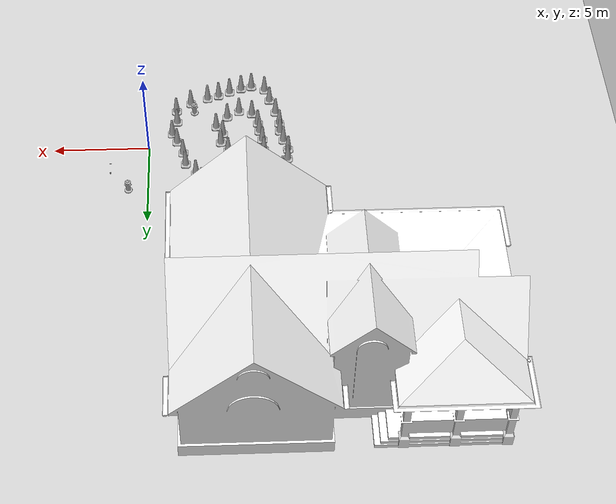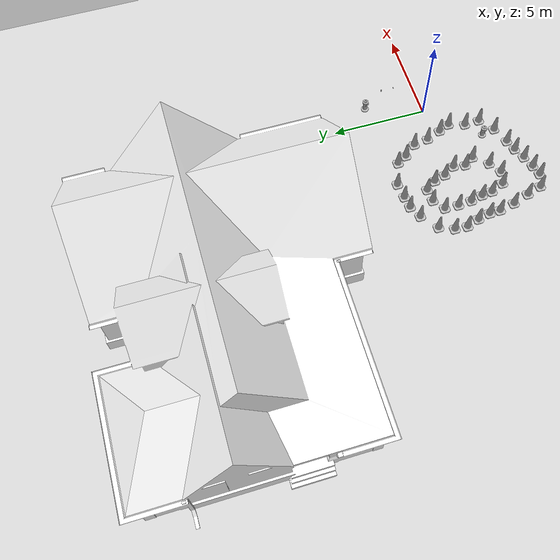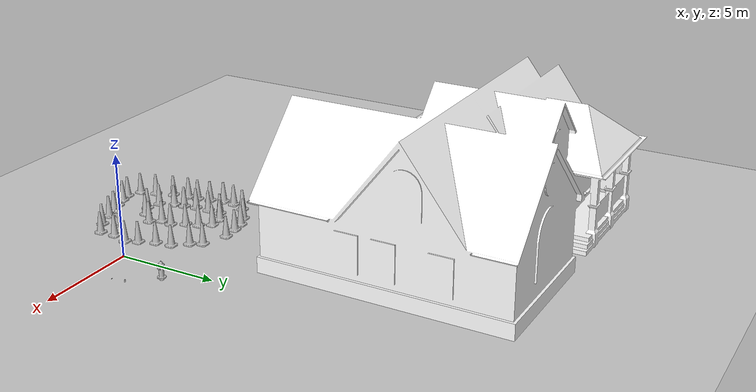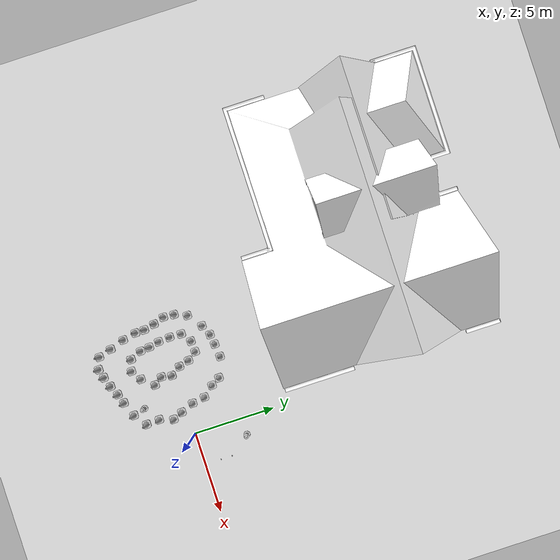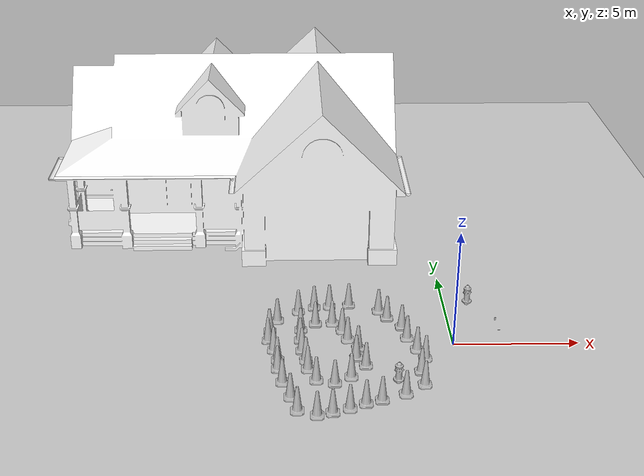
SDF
<sdf version="1.7">
 <world name="default">
  <light name="sun" type="directional">
   <pose>0 0 10 0 -0 0</pose>
   <diffuse>0.8 0.8 0.8 1</diffuse>
   <specular>0.2 0.2 0.2 1</specular>
   <attenuation>
    <range>1000</range>
    <constant>0.9</constant>
    <linear>0.01</linear>
    <quadratic>0.001</quadratic>
   </attenuation>
   <direction>-0.5 0.1 -0.9</direction>
   <spot><inner_angle>0</inner_angle><outer_angle>0</outer_angle><falloff>0</falloff></spot>
  </light>
  <model name="ground_plane">
   <static>1</static>
   <link name="link">
    <collision name="collision">
     <geometry><plane><normal>0 0 1</normal><size>100 100</size></plane></geometry>
     <surface>
      <contact><collide_bitmask>65535</collide_bitmask></contact>
      <friction><ode><mu>100</mu><mu2>50</mu2></ode></friction>
     </surface>
    </collision>
    <visual name="visual">
     <cast_shadows>0</cast_shadows>
     <geometry><plane><normal>0 0 1</normal><size>100 100</size></plane></geometry>
     <material>
      <script><uri>file://media/materials/scripts/gazebo.material</uri><name>Gazebo/Grey</name></script>
     </material>
    </visual>
   </link>
  </model>
  <gravity>0 0 -9.8</gravity>
  <magnetic_field>6e-06 2.3e-05 -4.2e-05</magnetic_field>
  <atmosphere type="adiabatic"/>
  <physics type="ode">
   <max_step_size>0.001</max_step_size>
   <real_time_factor>1</real_time_factor>
   <real_time_update_rate>1000</real_time_update_rate>
  </physics>
  <scene><ambient>0.4 0.4 0.4 1</ambient><background>0.7 0.7 0.7 1</background><shadows>1</shadows></scene>
  <audio><device>default</device></audio>
  <spherical_coordinates>
   <surface_model>EARTH_WGS84</surface_model>
   <latitude_deg>0</latitude_deg>
   <longitude_deg>0</longitude_deg>
   <elevation>0</elevation>
   <heading_deg>0</heading_deg>
  </spherical_coordinates>
  <model name="fire_hydrant">
   <static>1</static>
   <link name="link">
    <collision name="collision">
     <geometry><mesh><uri>model://fire_hydrant/meshes/fire_hydrant.dae</uri></mesh></geometry>
    </collision>
    <visual name="visual">
     <geometry><mesh><uri>model://fire_hydrant/meshes/fire_hydrant.dae</uri></mesh></geometry>
    </visual>
   </link>
   <pose>1 3 0 0 -0 0</pose>
  </model>
  <model name="House 1">
   <static>1</static>
   <link name="link">
    <collision name="collision">
     <geometry><mesh><uri>model://house_1/meshes/house_1.dae</uri><scale>1.5 1.5 1.5</scale></mesh></geometry>
    </collision>
    <visual name="visual">
     <geometry><mesh><uri>model://house_1/meshes/house_1.dae</uri><scale>1.5 1.5 1.5</scale></mesh></geometry>
     <material>
      <script>
       <uri>model://house_1/materials/scripts</uri>
       <uri>model://house_1/materials/textures</uri>
       <name>House_1/Diffuse</name>
      </script>
      <shader type="normal_map_tangent_space"><normal_map>House_1_Normal.png</normal_map></shader>
     </material>
    </visual>
   </link>
   <pose>-9 13 0 0 -0 0</pose>
  </model>
  <model name="stone_10_2_5_1cm">
   <link name="link">
    <pose>0 0 0.005 0 -0 0</pose>
    <inertial>
     <mass>0.0628</mass>
     <inertia>
      <ixx>3.79417e-06</ixx>
      <ixy>0</ixy>
      <ixz>0</ixz>
      <iyy>5.28567e-05</iyy>
      <iyz>0</iyz>
      <izz>5.56042e-05</izz>
     </inertia>
    </inertial>
    <collision name="collision">
     <geometry><box><size>0.1 0.025 0.01</size></box></geometry>
     <surface>
      <contact>
       <poissons_ratio>0.15</poissons_ratio>
       <elastic_modulus>8e+10</elastic_modulus>
       <ode><kp>100000</kp><kd>100</kd><max_vel>100</max_vel><min_depth>0.001</min_depth></ode>
      </contact>
      <friction>
       <torsional>
        <coefficient>1</coefficient>
        <use_patch_radius>0</use_patch_radius>
        <surface_radius>0.01</surface_radius>
       </torsional>
      </friction>
     </surface>
    </collision>
    <visual name="visual">
     <geometry><box><size>0.1 0.025 0.01</size></box></geometry>
     <material>
      <script><uri>file://media/materials/scripts/gazebo.material</uri><name>Gazebo/Grey</name></script>
     </material>
    </visual>
   </link>
   <pose>2 1 -0.001002 -0 -0 -0</pose>
  </model>
  <model name="coke_can">
   <link name="link">
    <inertial>
     <pose>0 0 0.06 0 -0 0</pose>
     <mass>0.39</mass>
     <inertia>
      <ixx>0.00055575</ixx>
      <ixy>0</ixy>
      <ixz>0</ixz>
      <iyy>0.00055575</iyy>
      <iyz>0</iyz>
      <izz>0.0001755</izz>
     </inertia>
    </inertial>
    <collision name="collision">
     <pose>0.003937 0.004724 -0.18 0 -0 0</pose>
     <geometry><mesh><uri>model://coke_can/meshes/coke_can.dae</uri></mesh></geometry>
     <surface>
      <friction><ode><mu>1</mu><mu2>1</mu2></ode></friction>
      <contact><ode><kp>1e+07</kp><kd>1</kd><min_depth>0.001</min_depth><max_vel>0.1</max_vel></ode></contact>
     </surface>
    </collision>
    <visual name="visual">
     <pose>0.003937 0.004724 -0.18 0 -0 0</pose>
     <geometry><mesh><uri>model://coke_can/meshes/coke_can.dae</uri></mesh></geometry>
    </visual>
   </link>
   <pose>1.98141 1.72126 -0.003472 -0.036728 0.008266 -0.000729</pose>
  </model>
  <model name="Construction Cone">
   <link name="link">
    <collision name="collision">
     <geometry>
      <mesh><scale>10 10 10</scale><uri>model://construction_cone/meshes/construction_cone.dae</uri></mesh>
     </geometry>
    </collision>
    <visual name="visual">
     <geometry>
      <mesh><scale>10 10 10</scale><uri>model://construction_cone/meshes/construction_cone.dae</uri></mesh>
     </geometry>
    </visual>
    <inertial>
     <inertia><ixx>1</ixx><ixy>0</ixy><ixz>0</ixz><iyy>1</iyy><iyz>0</iyz><izz>1</izz></inertia>
     <mass>1</mass>
    </inertial>
   </link>
   <pose>-3.59315 -1.4197 -0 0 -0 0</pose>
  </model>
  <model name="Construction Cone_0">
   <link name="link">
    <collision name="collision">
     <geometry>
      <mesh><scale>10 10 10</scale><uri>model://construction_cone/meshes/construction_cone.dae</uri></mesh>
     </geometry>
    </collision>
    <visual name="visual">
     <geometry>
      <mesh><scale>10 10 10</scale><uri>model://construction_cone/meshes/construction_cone.dae</uri></mesh>
     </geometry>
    </visual>
    <inertial>
     <inertia><ixx>1</ixx><ixy>0</ixy><ixz>0</ixz><iyy>1</iyy><iyz>0</iyz><izz>1</izz></inertia>
     <mass>1</mass>
    </inertial>
   </link>
   <pose>-3.82572 -0.266237 0 -0 -0 -0</pose>
  </model>
  <model name="Construction Cone_1">
   <link name="link">
    <collision name="collision">
     <geometry>
      <mesh><scale>10 10 10</scale><uri>model://construction_cone/meshes/construction_cone.dae</uri></mesh>
     </geometry>
    </collision>
    <visual name="visual">
     <geometry>
      <mesh><scale>10 10 10</scale><uri>model://construction_cone/meshes/construction_cone.dae</uri></mesh>
     </geometry>
    </visual>
    <inertial>
     <inertia><ixx>1</ixx><ixy>0</ixy><ixz>0</ixz><iyy>1</iyy><iyz>0</iyz><izz>1</izz></inertia>
     <mass>1</mass>
    </inertial>
   </link>
   <pose>-4.39054 0.991308 -0 0 -1e-06 0</pose>
  </model>
  <model name="fire_hydrant_0">
   <static>1</static>
   <link name="link">
    <collision name="collision">
     <geometry><mesh><uri>model://fire_hydrant/meshes/fire_hydrant.dae</uri></mesh></geometry>
    </collision>
    <visual name="visual">
     <geometry><mesh><uri>model://fire_hydrant/meshes/fire_hydrant.dae</uri></mesh></geometry>
    </visual>
   </link>
   <pose>-2.43254 -2.44206 0 0 -0 0</pose>
  </model>
  <model name="Construction Cone_2">
   <link name="link">
    <collision name="collision">
     <geometry>
      <mesh><scale>10 10 10</scale><uri>model://construction_cone/meshes/construction_cone.dae</uri></mesh>
     </geometry>
    </collision>
    <visual name="visual">
     <geometry>
      <mesh><scale>10 10 10</scale><uri>model://construction_cone/meshes/construction_cone.dae</uri></mesh>
     </geometry>
    </visual>
    <inertial>
     <inertia><ixx>1</ixx><ixy>0</ixy><ixz>0</ixz><iyy>1</iyy><iyz>0</iyz><izz>1</izz></inertia>
     <mass>1</mass>
    </inertial>
   </link>
   <pose>-1.49996 -1.83559 -1e-05 0 -0 0</pose>
  </model>
  <model name="Construction Cone_3">
   <link name="link">
    <collision name="collision">
     <geometry>
      <mesh><scale>10 10 10</scale><uri>model://construction_cone/meshes/construction_cone.dae</uri></mesh>
     </geometry>
    </collision>
    <visual name="visual">
     <geometry>
      <mesh><scale>10 10 10</scale><uri>model://construction_cone/meshes/construction_cone.dae</uri></mesh>
     </geometry>
    </visual>
    <inertial>
     <inertia><ixx>1</ixx><ixy>0</ixy><ixz>0</ixz><iyy>1</iyy><iyz>0</iyz><izz>1</izz></inertia>
     <mass>1</mass>
    </inertial>
   </link>
   <pose>-1.50504 -0.384565 0 -0 -0 -0</pose>
  </model>
  <model name="Construction Cone_4">
   <link name="link">
    <collision name="collision">
     <geometry>
      <mesh><scale>10 10 10</scale><uri>model://construction_cone/meshes/construction_cone.dae</uri></mesh>
     </geometry>
    </collision>
    <visual name="visual">
     <geometry>
      <mesh><scale>10 10 10</scale><uri>model://construction_cone/meshes/construction_cone.dae</uri></mesh>
     </geometry>
    </visual>
    <inertial>
     <inertia><ixx>1</ixx><ixy>0</ixy><ixz>0</ixz><iyy>1</iyy><iyz>0</iyz><izz>1</izz></inertia>
     <mass>1</mass>
    </inertial>
   </link>
   <pose>-1.24475 -0.983631 -0 0 -0 0</pose>
  </model>
  <model name="Construction Cone_5">
   <link name="link">
    <collision name="collision">
     <geometry>
      <mesh><scale>10 10 10</scale><uri>model://construction_cone/meshes/construction_cone.dae</uri></mesh>
     </geometry>
    </collision>
    <visual name="visual">
     <geometry>
      <mesh><scale>10 10 10</scale><uri>model://construction_cone/meshes/construction_cone.dae</uri></mesh>
     </geometry>
    </visual>
    <inertial>
     <inertia><ixx>1</ixx><ixy>0</ixy><ixz>0</ixz><iyy>1</iyy><iyz>0</iyz><izz>1</izz></inertia>
     <mass>1</mass>
    </inertial>
   </link>
   <pose>-1.46146 -2.65385 -0 0 -0 0</pose>
  </model>
  <model name="Construction Cone_6">
   <link name="link">
    <collision name="collision">
     <geometry>
      <mesh><scale>10 10 10</scale><uri>model://construction_cone/meshes/construction_cone.dae</uri></mesh>
     </geometry>
    </collision>
    <visual name="visual">
     <geometry>
      <mesh><scale>10 10 10</scale><uri>model://construction_cone/meshes/construction_cone.dae</uri></mesh>
     </geometry>
    </visual>
    <inertial>
     <inertia><ixx>1</ixx><ixy>0</ixy><ixz>0</ixz><iyy>1</iyy><iyz>0</iyz><izz>1</izz></inertia>
     <mass>1</mass>
    </inertial>
   </link>
   <pose>-1.82109 0.416762 -1e-05 -1e-06 -0 -0.016875</pose>
  </model>
  <model name="Construction Cone_7">
   <link name="link">
    <collision name="collision">
     <geometry>
      <mesh><scale>10 10 10</scale><uri>model://construction_cone/meshes/construction_cone.dae</uri></mesh>
     </geometry>
    </collision>
    <visual name="visual">
     <geometry>
      <mesh><scale>10 10 10</scale><uri>model://construction_cone/meshes/construction_cone.dae</uri></mesh>
     </geometry>
    </visual>
    <inertial>
     <inertia><ixx>1</ixx><ixy>0</ixy><ixz>0</ixz><iyy>1</iyy><iyz>0</iyz><izz>1</izz></inertia>
     <mass>1</mass>
    </inertial>
   </link>
   <pose>-1.95178 1.21823 -1e-05 0 1e-06 0</pose>
  </model>
  <model name="Construction Cone_8">
   <link name="link">
    <collision name="collision">
     <geometry>
      <mesh><scale>10 10 10</scale><uri>model://construction_cone/meshes/construction_cone.dae</uri></mesh>
     </geometry>
    </collision>
    <visual name="visual">
     <geometry>
      <mesh><scale>10 10 10</scale><uri>model://construction_cone/meshes/construction_cone.dae</uri></mesh>
     </geometry>
    </visual>
    <inertial>
     <inertia><ixx>1</ixx><ixy>0</ixy><ixz>0</ixz><iyy>1</iyy><iyz>0</iyz><izz>1</izz></inertia>
     <mass>1</mass>
    </inertial>
   </link>
   <pose>-2.49518 1.88441 -0 0 -1e-06 0.002082</pose>
  </model>
  <model name="Construction Cone_9">
   <link name="link">
    <collision name="collision">
     <geometry>
      <mesh><scale>10 10 10</scale><uri>model://construction_cone/meshes/construction_cone.dae</uri></mesh>
     </geometry>
    </collision>
    <visual name="visual">
     <geometry>
      <mesh><scale>10 10 10</scale><uri>model://construction_cone/meshes/construction_cone.dae</uri></mesh>
     </geometry>
    </visual>
    <inertial>
     <inertia><ixx>1</ixx><ixy>0</ixy><ixz>0</ixz><iyy>1</iyy><iyz>0</iyz><izz>1</izz></inertia>
     <mass>1</mass>
    </inertial>
   </link>
   <pose>-4.2044 0.351146 -0 0 -1e-06 0</pose>
  </model>
  <model name="Construction Cone_10">
   <link name="link">
    <collision name="collision">
     <geometry>
      <mesh><scale>10 10 10</scale><uri>model://construction_cone/meshes/construction_cone.dae</uri></mesh>
     </geometry>
    </collision>
    <visual name="visual">
     <geometry>
      <mesh><scale>10 10 10</scale><uri>model://construction_cone/meshes/construction_cone.dae</uri></mesh>
     </geometry>
    </visual>
    <inertial>
     <inertia><ixx>1</ixx><ixy>0</ixy><ixz>0</ixz><iyy>1</iyy><iyz>0</iyz><izz>1</izz></inertia>
     <mass>1</mass>
    </inertial>
   </link>
   <pose>-4.1982 -2.13147 -0 0 -1e-06 0</pose>
  </model>
  <model name="Construction Cone_11">
   <link name="link">
    <collision name="collision">
     <geometry>
      <mesh><scale>10 10 10</scale><uri>model://construction_cone/meshes/construction_cone.dae</uri></mesh>
     </geometry>
    </collision>
    <visual name="visual">
     <geometry>
      <mesh><scale>10 10 10</scale><uri>model://construction_cone/meshes/construction_cone.dae</uri></mesh>
     </geometry>
    </visual>
    <inertial>
     <inertia><ixx>1</ixx><ixy>0</ixy><ixz>0</ixz><iyy>1</iyy><iyz>0</iyz><izz>1</izz></inertia>
     <mass>1</mass>
    </inertial>
   </link>
   <pose>-3.93872 -0.894186 -1e-06 2e-06 2e-06 0</pose>
  </model>
  <model name="Construction Cone_12">
   <link name="link">
    <collision name="collision">
     <geometry>
      <mesh><scale>10 10 10</scale><uri>model://construction_cone/meshes/construction_cone.dae</uri></mesh>
     </geometry>
    </collision>
    <visual name="visual">
     <geometry>
      <mesh><scale>10 10 10</scale><uri>model://construction_cone/meshes/construction_cone.dae</uri></mesh>
     </geometry>
    </visual>
    <inertial>
     <inertia><ixx>1</ixx><ixy>0</ixy><ixz>0</ixz><iyy>1</iyy><iyz>0</iyz><izz>1</izz></inertia>
     <mass>1</mass>
    </inertial>
   </link>
   <pose>-2.23215 -3.22096 -0 1e-06 -0 0</pose>
  </model>
  <model name="Construction Cone_13">
   <link name="link">
    <collision name="collision">
     <geometry>
      <mesh><scale>10 10 10</scale><uri>model://construction_cone/meshes/construction_cone.dae</uri></mesh>
     </geometry>
    </collision>
    <visual name="visual">
     <geometry>
      <mesh><scale>10 10 10</scale><uri>model://construction_cone/meshes/construction_cone.dae</uri></mesh>
     </geometry>
    </visual>
    <inertial>
     <inertia><ixx>1</ixx><ixy>0</ixy><ixz>0</ixz><iyy>1</iyy><iyz>0</iyz><izz>1</izz></inertia>
     <mass>1</mass>
    </inertial>
   </link>
   <pose>-3.14576 -3.5718 -0 0 -0 0</pose>
  </model>
  <model name="Construction Cone_14">
   <link name="link">
    <collision name="collision">
     <geometry>
      <mesh><scale>10 10 10</scale><uri>model://construction_cone/meshes/construction_cone.dae</uri></mesh>
     </geometry>
    </collision>
    <visual name="visual">
     <geometry>
      <mesh><scale>10 10 10</scale><uri>model://construction_cone/meshes/construction_cone.dae</uri></mesh>
     </geometry>
    </visual>
    <inertial>
     <inertia><ixx>1</ixx><ixy>0</ixy><ixz>0</ixz><iyy>1</iyy><iyz>0</iyz><izz>1</izz></inertia>
     <mass>1</mass>
    </inertial>
   </link>
   <pose>-4.84028 -2.53095 -0 0 -1e-06 0</pose>
  </model>
  <model name="Construction Cone_15">
   <link name="link">
    <collision name="collision">
     <geometry>
      <mesh><scale>10 10 10</scale><uri>model://construction_cone/meshes/construction_cone.dae</uri></mesh>
     </geometry>
    </collision>
    <visual name="visual">
     <geometry>
      <mesh><scale>10 10 10</scale><uri>model://construction_cone/meshes/construction_cone.dae</uri></mesh>
     </geometry>
    </visual>
    <inertial>
     <inertia><ixx>1</ixx><ixy>0</ixy><ixz>0</ixz><iyy>1</iyy><iyz>0</iyz><izz>1</izz></inertia>
     <mass>1</mass>
    </inertial>
   </link>
   <pose>-5.53182 -2.32922 -0 0 -1e-06 0</pose>
  </model>
  <model name="Construction Cone_16">
   <link name="link">
    <collision name="collision">
     <geometry>
      <mesh><scale>10 10 10</scale><uri>model://construction_cone/meshes/construction_cone.dae</uri></mesh>
     </geometry>
    </collision>
    <visual name="visual">
     <geometry>
      <mesh><scale>10 10 10</scale><uri>model://construction_cone/meshes/construction_cone.dae</uri></mesh>
     </geometry>
    </visual>
    <inertial>
     <inertia><ixx>1</ixx><ixy>0</ixy><ixz>0</ixz><iyy>1</iyy><iyz>0</iyz><izz>1</izz></inertia>
     <mass>1</mass>
    </inertial>
   </link>
   <pose>-5.83387 -1.61602 -0 -0 -0 -0</pose>
  </model>
  <model name="Construction Cone_17">
   <link name="link">
    <collision name="collision">
     <geometry>
      <mesh><scale>10 10 10</scale><uri>model://construction_cone/meshes/construction_cone.dae</uri></mesh>
     </geometry>
    </collision>
    <visual name="visual">
     <geometry>
      <mesh><scale>10 10 10</scale><uri>model://construction_cone/meshes/construction_cone.dae</uri></mesh>
     </geometry>
    </visual>
    <inertial>
     <inertia><ixx>1</ixx><ixy>0</ixy><ixz>0</ixz><iyy>1</iyy><iyz>0</iyz><izz>1</izz></inertia>
     <mass>1</mass>
    </inertial>
   </link>
   <pose>-5.89955 -1.03597 -0 0 -0 0</pose>
  </model>
  <model name="Construction Cone_18">
   <link name="link">
    <collision name="collision">
     <geometry>
      <mesh><scale>10 10 10</scale><uri>model://construction_cone/meshes/construction_cone.dae</uri></mesh>
     </geometry>
    </collision>
    <visual name="visual">
     <geometry>
      <mesh><scale>10 10 10</scale><uri>model://construction_cone/meshes/construction_cone.dae</uri></mesh>
     </geometry>
    </visual>
    <inertial>
     <inertia><ixx>1</ixx><ixy>0</ixy><ixz>0</ixz><iyy>1</iyy><iyz>0</iyz><izz>1</izz></inertia>
     <mass>1</mass>
    </inertial>
   </link>
   <pose>-6.03919 -0.392927 -1e-05 -1e-06 1e-06 0</pose>
  </model>
  <model name="Construction Cone_19">
   <link name="link">
    <collision name="collision">
     <geometry>
      <mesh><scale>10 10 10</scale><uri>model://construction_cone/meshes/construction_cone.dae</uri></mesh>
     </geometry>
    </collision>
    <visual name="visual">
     <geometry>
      <mesh><scale>10 10 10</scale><uri>model://construction_cone/meshes/construction_cone.dae</uri></mesh>
     </geometry>
    </visual>
    <inertial>
     <inertia><ixx>1</ixx><ixy>0</ixy><ixz>0</ixz><iyy>1</iyy><iyz>0</iyz><izz>1</izz></inertia>
     <mass>1</mass>
    </inertial>
   </link>
   <pose>-6.09581 0.330101 -0 0 -0 0</pose>
  </model>
  <model name="Construction Cone_20">
   <link name="link">
    <collision name="collision">
     <geometry>
      <mesh><scale>10 10 10</scale><uri>model://construction_cone/meshes/construction_cone.dae</uri></mesh>
     </geometry>
    </collision>
    <visual name="visual">
     <geometry>
      <mesh><scale>10 10 10</scale><uri>model://construction_cone/meshes/construction_cone.dae</uri></mesh>
     </geometry>
    </visual>
    <inertial>
     <inertia><ixx>1</ixx><ixy>0</ixy><ixz>0</ixz><iyy>1</iyy><iyz>0</iyz><izz>1</izz></inertia>
     <mass>1</mass>
    </inertial>
   </link>
   <pose>-6.07052 1.06555 -0 0 -0 0</pose>
  </model>
  <model name="Construction Cone_21">
   <link name="link">
    <collision name="collision">
     <geometry>
      <mesh><scale>10 10 10</scale><uri>model://construction_cone/meshes/construction_cone.dae</uri></mesh>
     </geometry>
    </collision>
    <visual name="visual">
     <geometry>
      <mesh><scale>10 10 10</scale><uri>model://construction_cone/meshes/construction_cone.dae</uri></mesh>
     </geometry>
    </visual>
    <inertial>
     <inertia><ixx>1</ixx><ixy>0</ixy><ixz>0</ixz><iyy>1</iyy><iyz>0</iyz><izz>1</izz></inertia>
     <mass>1</mass>
    </inertial>
   </link>
   <pose>-5.46412 1.49181 -0 0 -1e-06 0</pose>
  </model>
  <model name="Construction Cone_22">
   <link name="link">
    <collision name="collision">
     <geometry>
      <mesh><scale>10 10 10</scale><uri>model://construction_cone/meshes/construction_cone.dae</uri></mesh>
     </geometry>
    </collision>
    <visual name="visual">
     <geometry>
      <mesh><scale>10 10 10</scale><uri>model://construction_cone/meshes/construction_cone.dae</uri></mesh>
     </geometry>
    </visual>
    <inertial>
     <inertia><ixx>1</ixx><ixy>0</ixy><ixz>0</ixz><iyy>1</iyy><iyz>0</iyz><izz>1</izz></inertia>
     <mass>1</mass>
    </inertial>
   </link>
   <pose>-4.77517 1.54196 -0 0 -0 0</pose>
  </model>
  <model name="Construction Cone_23">
   <link name="link">
    <collision name="collision">
     <geometry>
      <mesh><scale>10 10 10</scale><uri>model://construction_cone/meshes/construction_cone.dae</uri></mesh>
     </geometry>
    </collision>
    <visual name="visual">
     <geometry>
      <mesh><scale>10 10 10</scale><uri>model://construction_cone/meshes/construction_cone.dae</uri></mesh>
     </geometry>
    </visual>
    <inertial>
     <inertia><ixx>1</ixx><ixy>0</ixy><ixz>0</ixz><iyy>1</iyy><iyz>0</iyz><izz>1</izz></inertia>
     <mass>1</mass>
    </inertial>
   </link>
   <pose>-3.74991 -3.76688 -1e-05 0 -0 0</pose>
  </model>
  <model name="Construction Cone_24">
   <link name="link">
    <collision name="collision">
     <geometry>
      <mesh><scale>10 10 10</scale><uri>model://construction_cone/meshes/construction_cone.dae</uri></mesh>
     </geometry>
    </collision>
    <visual name="visual">
     <geometry>
      <mesh><scale>10 10 10</scale><uri>model://construction_cone/meshes/construction_cone.dae</uri></mesh>
     </geometry>
    </visual>
    <inertial>
     <inertia><ixx>1</ixx><ixy>0</ixy><ixz>0</ixz><iyy>1</iyy><iyz>0</iyz><izz>1</izz></inertia>
     <mass>1</mass>
    </inertial>
   </link>
   <pose>-4.35343 -4.0297 -0 0 -1e-06 0</pose>
  </model>
  <model name="Construction Cone_25">
   <link name="link">
    <collision name="collision">
     <geometry>
      <mesh><scale>10 10 10</scale><uri>model://construction_cone/meshes/construction_cone.dae</uri></mesh>
     </geometry>
    </collision>
    <visual name="visual">
     <geometry>
      <mesh><scale>10 10 10</scale><uri>model://construction_cone/meshes/construction_cone.dae</uri></mesh>
     </geometry>
    </visual>
    <inertial>
     <inertia><ixx>1</ixx><ixy>0</ixy><ixz>0</ixz><iyy>1</iyy><iyz>0</iyz><izz>1</izz></inertia>
     <mass>1</mass>
    </inertial>
   </link>
   <pose>-4.99036 -4.25816 -0 0 -0 0</pose>
  </model>
  <model name="Construction Cone_26">
   <link name="link">
    <collision name="collision">
     <geometry>
      <mesh><scale>10 10 10</scale><uri>model://construction_cone/meshes/construction_cone.dae</uri></mesh>
     </geometry>
    </collision>
    <visual name="visual">
     <geometry>
      <mesh><scale>10 10 10</scale><uri>model://construction_cone/meshes/construction_cone.dae</uri></mesh>
     </geometry>
    </visual>
    <inertial>
     <inertia><ixx>1</ixx><ixy>0</ixy><ixz>0</ixz><iyy>1</iyy><iyz>0</iyz><izz>1</izz></inertia>
     <mass>1</mass>
    </inertial>
   </link>
   <pose>-5.55807 -4.40573 -0 0 -1e-06 0</pose>
  </model>
  <model name="Construction Cone_27">
   <link name="link">
    <collision name="collision">
     <geometry>
      <mesh><scale>10 10 10</scale><uri>model://construction_cone/meshes/construction_cone.dae</uri></mesh>
     </geometry>
    </collision>
    <visual name="visual">
     <geometry>
      <mesh><scale>10 10 10</scale><uri>model://construction_cone/meshes/construction_cone.dae</uri></mesh>
     </geometry>
    </visual>
    <inertial>
     <inertia><ixx>1</ixx><ixy>0</ixy><ixz>0</ixz><iyy>1</iyy><iyz>0</iyz><izz>1</izz></inertia>
     <mass>1</mass>
    </inertial>
   </link>
   <pose>-6.26879 -4.12881 -0 0 -0 0</pose>
  </model>
  <model name="Construction Cone_28">
   <link name="link">
    <collision name="collision">
     <geometry>
      <mesh><scale>10 10 10</scale><uri>model://construction_cone/meshes/construction_cone.dae</uri></mesh>
     </geometry>
    </collision>
    <visual name="visual">
     <geometry>
      <mesh><scale>10 10 10</scale><uri>model://construction_cone/meshes/construction_cone.dae</uri></mesh>
     </geometry>
    </visual>
    <inertial>
     <inertia><ixx>1</ixx><ixy>0</ixy><ixz>0</ixz><iyy>1</iyy><iyz>0</iyz><izz>1</izz></inertia>
     <mass>1</mass>
    </inertial>
   </link>
   <pose>-6.51457 -3.32175 -0 0 -1e-06 0</pose>
  </model>
  <model name="Construction Cone_29">
   <link name="link">
    <collision name="collision">
     <geometry>
      <mesh><scale>10 10 10</scale><uri>model://construction_cone/meshes/construction_cone.dae</uri></mesh>
     </geometry>
    </collision>
    <visual name="visual">
     <geometry>
      <mesh><scale>10 10 10</scale><uri>model://construction_cone/meshes/construction_cone.dae</uri></mesh>
     </geometry>
    </visual>
    <inertial>
     <inertia><ixx>1</ixx><ixy>0</ixy><ixz>0</ixz><iyy>1</iyy><iyz>0</iyz><izz>1</izz></inertia>
     <mass>1</mass>
    </inertial>
   </link>
   <pose>-6.81365 -2.41796 0 -0 -0 -0</pose>
  </model>
  <model name="Construction Cone_30">
   <link name="link">
    <collision name="collision">
     <geometry>
      <mesh><scale>10 10 10</scale><uri>model://construction_cone/meshes/construction_cone.dae</uri></mesh>
     </geometry>
    </collision>
    <visual name="visual">
     <geometry>
      <mesh><scale>10 10 10</scale><uri>model://construction_cone/meshes/construction_cone.dae</uri></mesh>
     </geometry>
    </visual>
    <inertial>
     <inertia><ixx>1</ixx><ixy>0</ixy><ixz>0</ixz><iyy>1</iyy><iyz>0</iyz><izz>1</izz></inertia>
     <mass>1</mass>
    </inertial>
   </link>
   <pose>-6.99112 -1.58407 -1e-05 -1e-06 0 0</pose>
  </model>
  <model name="Construction Cone_31">
   <link name="link">
    <collision name="collision">
     <geometry>
      <mesh><scale>10 10 10</scale><uri>model://construction_cone/meshes/construction_cone.dae</uri></mesh>
     </geometry>
    </collision>
    <visual name="visual">
     <geometry>
      <mesh><scale>10 10 10</scale><uri>model://construction_cone/meshes/construction_cone.dae</uri></mesh>
     </geometry>
    </visual>
    <inertial>
     <inertia><ixx>1</ixx><ixy>0</ixy><ixz>0</ixz><iyy>1</iyy><iyz>0</iyz><izz>1</izz></inertia>
     <mass>1</mass>
    </inertial>
   </link>
   <pose>-7.00247 -1.00079 -0 0 -1e-06 0</pose>
  </model>
  <model name="Construction Cone_32">
   <link name="link">
    <collision name="collision">
     <geometry>
      <mesh><scale>10 10 10</scale><uri>model://construction_cone/meshes/construction_cone.dae</uri></mesh>
     </geometry>
    </collision>
    <visual name="visual">
     <geometry>
      <mesh><scale>10 10 10</scale><uri>model://construction_cone/meshes/construction_cone.dae</uri></mesh>
     </geometry>
    </visual>
    <inertial>
     <inertia><ixx>1</ixx><ixy>0</ixy><ixz>0</ixz><iyy>1</iyy><iyz>0</iyz><izz>1</izz></inertia>
     <mass>1</mass>
    </inertial>
   </link>
   <pose>-7.15406 -0.334706 0 -0 -0 -0</pose>
  </model>
  <model name="Construction Cone_33">
   <link name="link">
    <collision name="collision">
     <geometry>
      <mesh><scale>10 10 10</scale><uri>model://construction_cone/meshes/construction_cone.dae</uri></mesh>
     </geometry>
    </collision>
    <visual name="visual">
     <geometry>
      <mesh><scale>10 10 10</scale><uri>model://construction_cone/meshes/construction_cone.dae</uri></mesh>
     </geometry>
    </visual>
    <inertial>
     <inertia><ixx>1</ixx><ixy>0</ixy><ixz>0</ixz><iyy>1</iyy><iyz>0</iyz><izz>1</izz></inertia>
     <mass>1</mass>
    </inertial>
   </link>
   <pose>-7.38182 0.343461 -1e-05 -0 -0 -0</pose>
  </model>
  <model name="Construction Cone_34">
   <link name="link">
    <collision name="collision">
     <geometry>
      <mesh><scale>10 10 10</scale><uri>model://construction_cone/meshes/construction_cone.dae</uri></mesh>
     </geometry>
    </collision>
    <visual name="visual">
     <geometry>
      <mesh><scale>10 10 10</scale><uri>model://construction_cone/meshes/construction_cone.dae</uri></mesh>
     </geometry>
    </visual>
    <inertial>
     <inertia><ixx>1</ixx><ixy>0</ixy><ixz>0</ixz><iyy>1</iyy><iyz>0</iyz><izz>1</izz></inertia>
     <mass>1</mass>
    </inertial>
   </link>
   <pose>-7.33032 1.01034 -0 0 -0 0</pose>
  </model>
  <model name="Construction Cone_35">
   <link name="link">
    <collision name="collision">
     <geometry>
      <mesh><scale>10 10 10</scale><uri>model://construction_cone/meshes/construction_cone.dae</uri></mesh>
     </geometry>
    </collision>
    <visual name="visual">
     <geometry>
      <mesh><scale>10 10 10</scale><uri>model://construction_cone/meshes/construction_cone.dae</uri></mesh>
     </geometry>
    </visual>
    <inertial>
     <inertia><ixx>1</ixx><ixy>0</ixy><ixz>0</ixz><iyy>1</iyy><iyz>0</iyz><izz>1</izz></inertia>
     <mass>1</mass>
    </inertial>
   </link>
   <pose>-7.0185 1.76848 -0 0 -1e-06 0</pose>
  </model>
  <model name="Construction Cone_36">
   <link name="link">
    <collision name="collision">
     <geometry>
      <mesh><scale>10 10 10</scale><uri>model://construction_cone/meshes/construction_cone.dae</uri></mesh>
     </geometry>
    </collision>
    <visual name="visual">
     <geometry>
      <mesh><scale>10 10 10</scale><uri>model://construction_cone/meshes/construction_cone.dae</uri></mesh>
     </geometry>
    </visual>
    <inertial>
     <inertia><ixx>1</ixx><ixy>0</ixy><ixz>0</ixz><iyy>1</iyy><iyz>0</iyz><izz>1</izz></inertia>
     <mass>1</mass>
    </inertial>
   </link>
   <pose>-6.14963 2.42199 -0 0 -1e-06 0</pose>
  </model>
  <model name="Construction Cone_37">
   <link name="link">
    <collision name="collision">
     <geometry>
      <mesh><scale>10 10 10</scale><uri>model://construction_cone/meshes/construction_cone.dae</uri></mesh>
     </geometry>
    </collision>
    <visual name="visual">
     <geometry>
      <mesh><scale>10 10 10</scale><uri>model://construction_cone/meshes/construction_cone.dae</uri></mesh>
     </geometry>
    </visual>
    <inertial>
     <inertia><ixx>1</ixx><ixy>0</ixy><ixz>0</ixz><iyy>1</iyy><iyz>0</iyz><izz>1</izz></inertia>
     <mass>1</mass>
    </inertial>
   </link>
   <pose>-5.48377 2.73148 -0 0 -0 0</pose>
  </model>
  <model name="Construction Cone_38">
   <link name="link">
    <collision name="collision">
     <geometry>
      <mesh><scale>10 10 10</scale><uri>model://construction_cone/meshes/construction_cone.dae</uri></mesh>
     </geometry>
    </collision>
    <visual name="visual">
     <geometry>
      <mesh><scale>10 10 10</scale><uri>model://construction_cone/meshes/construction_cone.dae</uri></mesh>
     </geometry>
    </visual>
    <inertial>
     <inertia><ixx>1</ixx><ixy>0</ixy><ixz>0</ixz><iyy>1</iyy><iyz>0</iyz><izz>1</izz></inertia>
     <mass>1</mass>
    </inertial>
   </link>
   <pose>-4.84194 2.81644 -0 0 -0 0</pose>
  </model>
  <model name="Construction Cone_39">
   <link name="link">
    <collision name="collision">
     <geometry>
      <mesh><scale>10 10 10</scale><uri>model://construction_cone/meshes/construction_cone.dae</uri></mesh>
     </geometry>
    </collision>
    <visual name="visual">
     <geometry>
      <mesh><scale>10 10 10</scale><uri>model://construction_cone/meshes/construction_cone.dae</uri></mesh>
     </geometry>
    </visual>
    <inertial>
     <inertia><ixx>1</ixx><ixy>0</ixy><ixz>0</ixz><iyy>1</iyy><iyz>0</iyz><izz>1</izz></inertia>
     <mass>1</mass>
    </inertial>
   </link>
   <pose>-4.02309 2.89856 -1e-05 0 -0 0</pose>
  </model>
  <model name="Construction Cone_40">
   <link name="link">
    <collision name="collision">
     <geometry>
      <mesh><scale>10 10 10</scale><uri>model://construction_cone/meshes/construction_cone.dae</uri></mesh>
     </geometry>
    </collision>
    <visual name="visual">
     <geometry>
      <mesh><scale>10 10 10</scale><uri>model://construction_cone/meshes/construction_cone.dae</uri></mesh>
     </geometry>
    </visual>
    <inertial>
     <inertia><ixx>1</ixx><ixy>0</ixy><ixz>0</ixz><iyy>1</iyy><iyz>0</iyz><izz>1</izz></inertia>
     <mass>1</mass>
    </inertial>
   </link>
   <pose>-2.80436 2.42901 -0 0 -0 0</pose>
  </model>
 </world>
</sdf>
